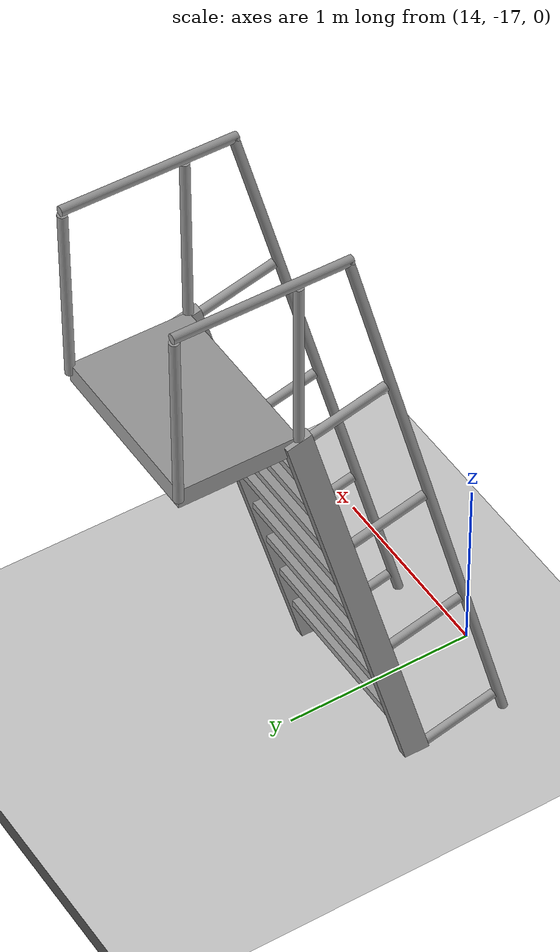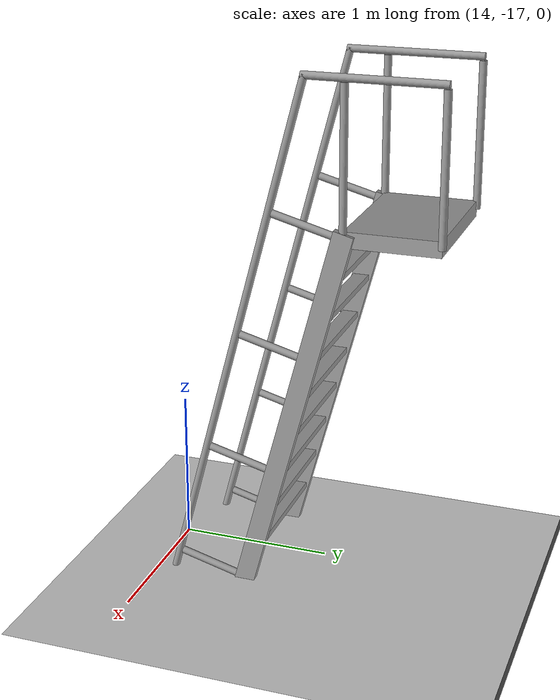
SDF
<sdf version="1.4">
 <world name="default">
  <model name="ground_plane">
   <static>1</static>
   <link name="link">
    <collision name="collision">
     <geometry><plane><normal>0 0 1</normal><size>100 100</size></plane></geometry>
     <surface><friction><ode><mu>100</mu><mu2>50</mu2></ode></friction></surface>
    </collision>
    <visual name="visual">
     <cast_shadows>0</cast_shadows>
     <geometry><plane><normal>0 0 1</normal><size>100 100</size></plane></geometry>
     <material>
      <script><uri>file://media/materials/scripts/gazebo.material</uri><name>Gazebo/Grey</name></script>
     </material>
    </visual>
    <velocity_decay><linear>0</linear><angular>0</angular></velocity_decay>
   </link>
  </model>
  <model name="asphalt_plane">
   <static>1</static>
   <link name="link">
    <collision name="collision"><geometry><box><size>20 20 0.1</size></box></geometry></collision>
    <visual name="visual">
     <cast_shadows>0</cast_shadows>
     <geometry><box><size>20 20 0.1</size></box></geometry>
     <material>
      <script>
       <uri>model://asphalt_plane/materials/scripts</uri>
       <uri>model://asphalt_plane/materials/textures</uri>
       <name>vrc/asphalt</name>
      </script>
     </material>
    </visual>
    <velocity_decay><linear>0</linear><angular>0</angular></velocity_decay>
   </link>
   <pose>10 10 0 0 -0 0</pose>
  </model>
  <model name="ladder_75deg_2rails">
   <static>1</static>
   <link name="step0">
    <pose>0 0.0714531 0.266667 0 -0 0</pose>
    <inertial>
     <mass>9.75482</mass>
     <inertia>
      <ixx>0.00957124</ixx>
      <iyy>0.65963</iyy>
      <izz>0.666842</izz>
      <ixy>0</ixy>
      <ixz>0</ixz>
      <iyz>0</iyz>
     </inertia>
    </inertial>
    <collision name="collision"><geometry><box><size>0.9 0.1016 0.0381</size></box></geometry></collision>
    <visual name="visual">
     <geometry><box><size>0.9 0.1016 0.0381</size></box></geometry>
     <material>
      <script><uri>file://media/materials/scripts/gazebo.material</uri><name>Gazebo/Grey</name></script>
     </material>
    </visual>
    <velocity_decay><linear>0</linear><angular>0</angular></velocity_decay>
   </link>
   <link name="step1">
    <pose>0 0.142906 0.533333 0 -0 0</pose>
    <inertial>
     <mass>9.75482</mass>
     <inertia>
      <ixx>0.00957124</ixx>
      <iyy>0.65963</iyy>
      <izz>0.666842</izz>
      <ixy>0</ixy>
      <ixz>0</ixz>
      <iyz>0</iyz>
     </inertia>
    </inertial>
    <collision name="collision"><geometry><box><size>0.9 0.1016 0.0381</size></box></geometry></collision>
    <visual name="visual">
     <geometry><box><size>0.9 0.1016 0.0381</size></box></geometry>
     <material>
      <script><uri>file://media/materials/scripts/gazebo.material</uri><name>Gazebo/Grey</name></script>
     </material>
    </visual>
    <velocity_decay><linear>0</linear><angular>0</angular></velocity_decay>
   </link>
   <link name="step2">
    <pose>0 0.214359 0.8 0 -0 0</pose>
    <inertial>
     <mass>9.75482</mass>
     <inertia>
      <ixx>0.00957124</ixx>
      <iyy>0.65963</iyy>
      <izz>0.666842</izz>
      <ixy>0</ixy>
      <ixz>0</ixz>
      <iyz>0</iyz>
     </inertia>
    </inertial>
    <collision name="collision"><geometry><box><size>0.9 0.1016 0.0381</size></box></geometry></collision>
    <visual name="visual">
     <geometry><box><size>0.9 0.1016 0.0381</size></box></geometry>
     <material>
      <script><uri>file://media/materials/scripts/gazebo.material</uri><name>Gazebo/Grey</name></script>
     </material>
    </visual>
    <velocity_decay><linear>0</linear><angular>0</angular></velocity_decay>
   </link>
   <link name="step3">
    <pose>0 0.285812 1.06667 0 -0 0</pose>
    <inertial>
     <mass>9.75482</mass>
     <inertia>
      <ixx>0.00957124</ixx>
      <iyy>0.65963</iyy>
      <izz>0.666842</izz>
      <ixy>0</ixy>
      <ixz>0</ixz>
      <iyz>0</iyz>
     </inertia>
    </inertial>
    <collision name="collision"><geometry><box><size>0.9 0.1016 0.0381</size></box></geometry></collision>
    <visual name="visual">
     <geometry><box><size>0.9 0.1016 0.0381</size></box></geometry>
     <material>
      <script><uri>file://media/materials/scripts/gazebo.material</uri><name>Gazebo/Grey</name></script>
     </material>
    </visual>
    <velocity_decay><linear>0</linear><angular>0</angular></velocity_decay>
   </link>
   <link name="step4">
    <pose>0 0.357266 1.33333 0 -0 0</pose>
    <inertial>
     <mass>9.75482</mass>
     <inertia>
      <ixx>0.00957124</ixx>
      <iyy>0.65963</iyy>
      <izz>0.666842</izz>
      <ixy>0</ixy>
      <ixz>0</ixz>
      <iyz>0</iyz>
     </inertia>
    </inertial>
    <collision name="collision"><geometry><box><size>0.9 0.1016 0.0381</size></box></geometry></collision>
    <visual name="visual">
     <geometry><box><size>0.9 0.1016 0.0381</size></box></geometry>
     <material>
      <script><uri>file://media/materials/scripts/gazebo.material</uri><name>Gazebo/Grey</name></script>
     </material>
    </visual>
    <velocity_decay><linear>0</linear><angular>0</angular></velocity_decay>
   </link>
   <link name="step5">
    <pose>0 0.428719 1.6 0 -0 0</pose>
    <inertial>
     <mass>9.75482</mass>
     <inertia>
      <ixx>0.00957124</ixx>
      <iyy>0.65963</iyy>
      <izz>0.666842</izz>
      <ixy>0</ixy>
      <ixz>0</ixz>
      <iyz>0</iyz>
     </inertia>
    </inertial>
    <collision name="collision"><geometry><box><size>0.9 0.1016 0.0381</size></box></geometry></collision>
    <visual name="visual">
     <geometry><box><size>0.9 0.1016 0.0381</size></box></geometry>
     <material>
      <script><uri>file://media/materials/scripts/gazebo.material</uri><name>Gazebo/Grey</name></script>
     </material>
    </visual>
    <velocity_decay><linear>0</linear><angular>0</angular></velocity_decay>
   </link>
   <link name="step6">
    <pose>0 0.500172 1.86667 0 -0 0</pose>
    <inertial>
     <mass>9.75482</mass>
     <inertia>
      <ixx>0.00957124</ixx>
      <iyy>0.65963</iyy>
      <izz>0.666842</izz>
      <ixy>0</ixy>
      <ixz>0</ixz>
      <iyz>0</iyz>
     </inertia>
    </inertial>
    <collision name="collision"><geometry><box><size>0.9 0.1016 0.0381</size></box></geometry></collision>
    <visual name="visual">
     <geometry><box><size>0.9 0.1016 0.0381</size></box></geometry>
     <material>
      <script><uri>file://media/materials/scripts/gazebo.material</uri><name>Gazebo/Grey</name></script>
     </material>
    </visual>
    <velocity_decay><linear>0</linear><angular>0</angular></velocity_decay>
   </link>
   <link name="step7">
    <pose>0 0.571625 2.13333 0 -0 0</pose>
    <inertial>
     <mass>9.75482</mass>
     <inertia>
      <ixx>0.00957124</ixx>
      <iyy>0.65963</iyy>
      <izz>0.666842</izz>
      <ixy>0</ixy>
      <ixz>0</ixz>
      <iyz>0</iyz>
     </inertia>
    </inertial>
    <collision name="collision"><geometry><box><size>0.9 0.1016 0.0381</size></box></geometry></collision>
    <visual name="visual">
     <geometry><box><size>0.9 0.1016 0.0381</size></box></geometry>
     <material>
      <script><uri>file://media/materials/scripts/gazebo.material</uri><name>Gazebo/Grey</name></script>
     </material>
    </visual>
    <velocity_decay><linear>0</linear><angular>0</angular></velocity_decay>
   </link>
   <link name="landing">
    <pose>0 0.943078 2.4 0 -0 0</pose>
    <inertial>
     <mass>57.6072</mass>
     <inertia><ixx>1.73518</ixx><iyy>3.89545</iyy><izz>5.6167</izz><ixy>0</ixy><ixz>0</ixz><iyz>0</iyz></inertia>
    </inertial>
    <collision name="collision"><geometry><box><size>0.9 0.6 0.1016</size></box></geometry></collision>
    <visual name="visual">
     <geometry><box><size>0.9 0.6 0.1016</size></box></geometry>
     <material>
      <script><uri>file://media/materials/scripts/gazebo.material</uri><name>Gazebo/Grey</name></script>
     </material>
    </visual>
    <velocity_decay><linear>0</linear><angular>0</angular></velocity_decay>
   </link>
   <link name="left_side_wall">
    <pose>-0.45 0.321539 1.2 1.309 -0 0</pose>
    <collision name="collision"><geometry><box><size>0.0508 2.56466 0.13</size></box></geometry></collision>
    <visual name="visual">
     <geometry><box><size>0.0508 2.56466 0.13</size></box></geometry>
     <material>
      <script><uri>file://media/materials/scripts/gazebo.material</uri><name>Gazebo/Grey</name></script>
     </material>
    </visual>
    <velocity_decay><linear>0</linear><angular>0</angular></velocity_decay>
   </link>
   <link name="right_side_wall">
    <pose>0.45 0.321539 1.2 1.309 -0 0</pose>
    <collision name="collision"><geometry><box><size>0.0508 2.56466 0.13</size></box></geometry></collision>
    <visual name="visual">
     <geometry><box><size>0.0508 2.56466 0.13</size></box></geometry>
     <material>
      <script><uri>file://media/materials/scripts/gazebo.material</uri><name>Gazebo/Grey</name></script>
     </material>
    </visual>
    <velocity_decay><linear>0</linear><angular>0</angular></velocity_decay>
   </link>
   <link name="left_railing_long">
    <pose>-0.45 -0.053461 1.66651 -0.261799 0 0</pose>
    <collision name="collision">
     <geometry><cylinder><radius>0.02413</radius><length>3.51529</length></cylinder></geometry>
    </collision>
    <visual name="visual">
     <geometry><cylinder><radius>0.02413</radius><length>3.51529</length></cylinder></geometry>
     <material>
      <script><uri>file://media/materials/scripts/gazebo.material</uri><name>Gazebo/Grey</name></script>
     </material>
    </visual>
    <velocity_decay><linear>0</linear><angular>0</angular></velocity_decay>
   </link>
   <link name="left_railing_upright0">
    <pose>-0.45 -0.210089 0.0562931 1.309 -0 0</pose>
    <collision name="collision">
     <geometry><cylinder><radius>0.02413</radius><length>0.482963</length></cylinder></geometry>
    </collision>
    <visual name="visual">
     <geometry><cylinder><radius>0.02413</radius><length>0.482963</length></cylinder></geometry>
     <material>
      <script><uri>file://media/materials/scripts/gazebo.material</uri><name>Gazebo/Grey</name></script>
     </material>
    </visual>
    <velocity_decay><linear>0</linear><angular>0</angular></velocity_decay>
   </link>
   <link name="left_railing_upright1">
    <pose>-0.45 0.00427049 0.856293 1.309 -0 0</pose>
    <collision name="collision">
     <geometry><cylinder><radius>0.02413</radius><length>0.482963</length></cylinder></geometry>
    </collision>
    <visual name="visual">
     <geometry><cylinder><radius>0.02413</radius><length>0.482963</length></cylinder></geometry>
     <material>
      <script><uri>file://media/materials/scripts/gazebo.material</uri><name>Gazebo/Grey</name></script>
     </material>
    </visual>
    <velocity_decay><linear>0</linear><angular>0</angular></velocity_decay>
   </link>
   <link name="left_railing_upright2">
    <pose>-0.45 0.21863 1.65629 1.309 -0 0</pose>
    <collision name="collision">
     <geometry><cylinder><radius>0.02413</radius><length>0.482963</length></cylinder></geometry>
    </collision>
    <visual name="visual">
     <geometry><cylinder><radius>0.02413</radius><length>0.482963</length></cylinder></geometry>
     <material>
      <script><uri>file://media/materials/scripts/gazebo.material</uri><name>Gazebo/Grey</name></script>
     </material>
    </visual>
    <velocity_decay><linear>0</linear><angular>0</angular></velocity_decay>
   </link>
   <link name="left_railing_upright3">
    <pose>-0.45 0.432989 2.45629 1.309 -0 0</pose>
    <collision name="collision">
     <geometry><cylinder><radius>0.02413</radius><length>0.482963</length></cylinder></geometry>
    </collision>
    <visual name="visual">
     <geometry><cylinder><radius>0.02413</radius><length>0.482963</length></cylinder></geometry>
     <material>
      <script><uri>file://media/materials/scripts/gazebo.material</uri><name>Gazebo/Grey</name></script>
     </material>
    </visual>
    <velocity_decay><linear>0</linear><angular>0</angular></velocity_decay>
   </link>
   <link name="left_railing_landing_top">
    <pose>-0.45 0.818078 3.35714 1.5708 -0 0</pose>
    <collision name="collision">
     <geometry><cylinder><radius>0.02413</radius><length>0.87413</length></cylinder></geometry>
    </collision>
    <visual name="visual">
     <geometry><cylinder><radius>0.02413</radius><length>0.87413</length></cylinder></geometry>
     <material>
      <script><uri>file://media/materials/scripts/gazebo.material</uri><name>Gazebo/Grey</name></script>
     </material>
    </visual>
    <velocity_decay><linear>0</linear><angular>0</angular></velocity_decay>
   </link>
   <link name="left_railing_landing_upright_0">
    <pose>-0.45 0.643078 2.86651 0 -0 0</pose>
    <collision name="collision">
     <geometry><cylinder><radius>0.02413</radius><length>0.933013</length></cylinder></geometry>
    </collision>
    <visual name="visual">
     <geometry><cylinder><radius>0.02413</radius><length>0.933013</length></cylinder></geometry>
     <material>
      <script><uri>file://media/materials/scripts/gazebo.material</uri><name>Gazebo/Grey</name></script>
     </material>
    </visual>
    <velocity_decay><linear>0</linear><angular>0</angular></velocity_decay>
   </link>
   <link name="left_railing_landing_upright_1">
    <pose>-0.45 1.24308 2.86651 0 -0 0</pose>
    <collision name="collision">
     <geometry><cylinder><radius>0.02413</radius><length>0.933013</length></cylinder></geometry>
    </collision>
    <visual name="visual">
     <geometry><cylinder><radius>0.02413</radius><length>0.933013</length></cylinder></geometry>
     <material>
      <script><uri>file://media/materials/scripts/gazebo.material</uri><name>Gazebo/Grey</name></script>
     </material>
    </visual>
    <velocity_decay><linear>0</linear><angular>0</angular></velocity_decay>
   </link>
   <link name="right_railing_long">
    <pose>0.45 -0.053461 1.66651 -0.261799 0 0</pose>
    <collision name="collision">
     <geometry><cylinder><radius>0.02413</radius><length>3.51529</length></cylinder></geometry>
    </collision>
    <visual name="visual">
     <geometry><cylinder><radius>0.02413</radius><length>3.51529</length></cylinder></geometry>
     <material>
      <script><uri>file://media/materials/scripts/gazebo.material</uri><name>Gazebo/Grey</name></script>
     </material>
    </visual>
    <velocity_decay><linear>0</linear><angular>0</angular></velocity_decay>
   </link>
   <link name="right_railing_upright0">
    <pose>0.45 -0.210089 0.0562931 1.309 -0 0</pose>
    <collision name="collision">
     <geometry><cylinder><radius>0.02413</radius><length>0.482963</length></cylinder></geometry>
    </collision>
    <visual name="visual">
     <geometry><cylinder><radius>0.02413</radius><length>0.482963</length></cylinder></geometry>
     <material>
      <script><uri>file://media/materials/scripts/gazebo.material</uri><name>Gazebo/Grey</name></script>
     </material>
    </visual>
    <velocity_decay><linear>0</linear><angular>0</angular></velocity_decay>
   </link>
   <link name="right_railing_upright1">
    <pose>0.45 0.00427049 0.856293 1.309 -0 0</pose>
    <collision name="collision">
     <geometry><cylinder><radius>0.02413</radius><length>0.482963</length></cylinder></geometry>
    </collision>
    <visual name="visual">
     <geometry><cylinder><radius>0.02413</radius><length>0.482963</length></cylinder></geometry>
     <material>
      <script><uri>file://media/materials/scripts/gazebo.material</uri><name>Gazebo/Grey</name></script>
     </material>
    </visual>
    <velocity_decay><linear>0</linear><angular>0</angular></velocity_decay>
   </link>
   <link name="right_railing_upright2">
    <pose>0.45 0.21863 1.65629 1.309 -0 0</pose>
    <collision name="collision">
     <geometry><cylinder><radius>0.02413</radius><length>0.482963</length></cylinder></geometry>
    </collision>
    <visual name="visual">
     <geometry><cylinder><radius>0.02413</radius><length>0.482963</length></cylinder></geometry>
     <material>
      <script><uri>file://media/materials/scripts/gazebo.material</uri><name>Gazebo/Grey</name></script>
     </material>
    </visual>
    <velocity_decay><linear>0</linear><angular>0</angular></velocity_decay>
   </link>
   <link name="right_railing_upright3">
    <pose>0.45 0.432989 2.45629 1.309 -0 0</pose>
    <collision name="collision">
     <geometry><cylinder><radius>0.02413</radius><length>0.482963</length></cylinder></geometry>
    </collision>
    <visual name="visual">
     <geometry><cylinder><radius>0.02413</radius><length>0.482963</length></cylinder></geometry>
     <material>
      <script><uri>file://media/materials/scripts/gazebo.material</uri><name>Gazebo/Grey</name></script>
     </material>
    </visual>
    <velocity_decay><linear>0</linear><angular>0</angular></velocity_decay>
   </link>
   <link name="right_railing_landing_top">
    <pose>0.45 0.818078 3.35714 1.5708 -0 0</pose>
    <collision name="collision">
     <geometry><cylinder><radius>0.02413</radius><length>0.87413</length></cylinder></geometry>
    </collision>
    <visual name="visual">
     <geometry><cylinder><radius>0.02413</radius><length>0.87413</length></cylinder></geometry>
     <material>
      <script><uri>file://media/materials/scripts/gazebo.material</uri><name>Gazebo/Grey</name></script>
     </material>
    </visual>
    <velocity_decay><linear>0</linear><angular>0</angular></velocity_decay>
   </link>
   <link name="right_railing_landing_upright_0">
    <pose>0.45 0.643078 2.86651 0 -0 0</pose>
    <collision name="collision">
     <geometry><cylinder><radius>0.02413</radius><length>0.933013</length></cylinder></geometry>
    </collision>
    <visual name="visual">
     <geometry><cylinder><radius>0.02413</radius><length>0.933013</length></cylinder></geometry>
     <material>
      <script><uri>file://media/materials/scripts/gazebo.material</uri><name>Gazebo/Grey</name></script>
     </material>
    </visual>
    <velocity_decay><linear>0</linear><angular>0</angular></velocity_decay>
   </link>
   <link name="right_railing_landing_upright_1">
    <pose>0.45 1.24308 2.86651 0 -0 0</pose>
    <collision name="collision">
     <geometry><cylinder><radius>0.02413</radius><length>0.933013</length></cylinder></geometry>
    </collision>
    <visual name="visual">
     <geometry><cylinder><radius>0.02413</radius><length>0.933013</length></cylinder></geometry>
     <material>
      <script><uri>file://media/materials/scripts/gazebo.material</uri><name>Gazebo/Grey</name></script>
     </material>
    </visual>
    <velocity_decay><linear>0</linear><angular>0</angular></velocity_decay>
   </link>
   <pose>14 -16.4008 0 0 -0 0</pose>
  </model>
 </world>
</sdf>
